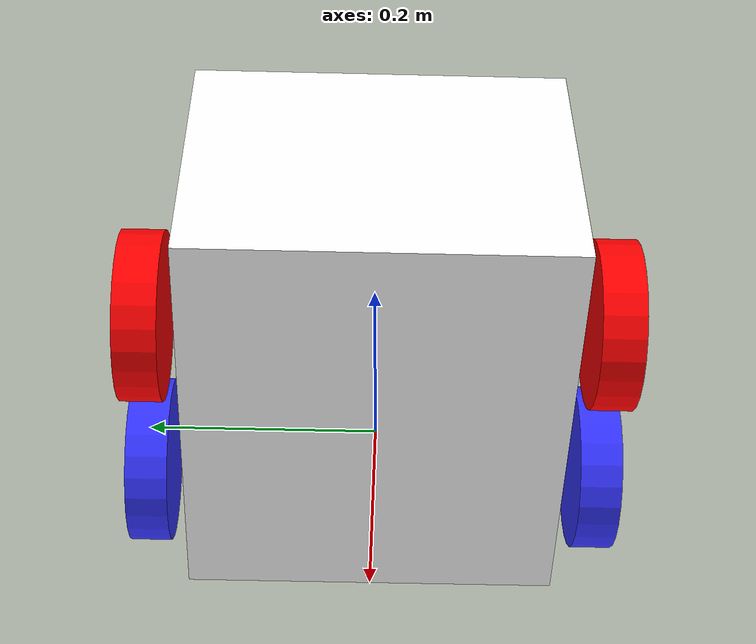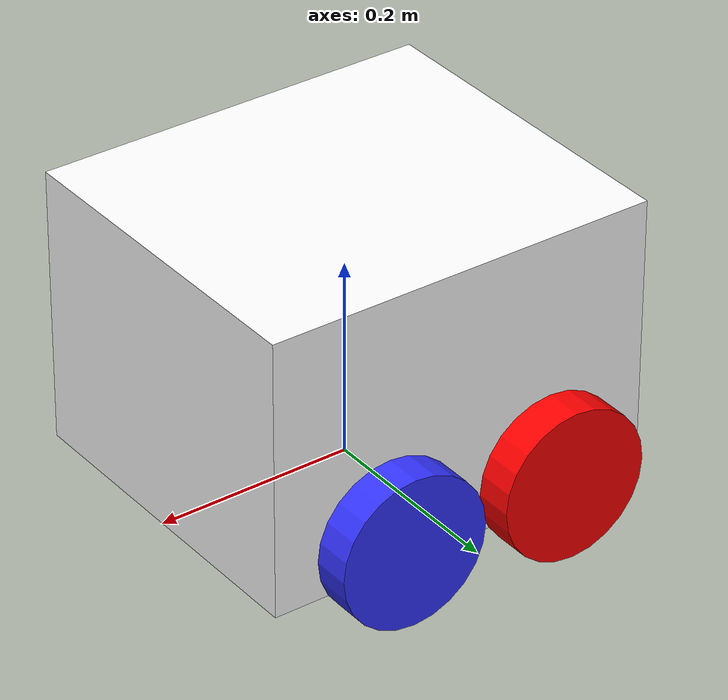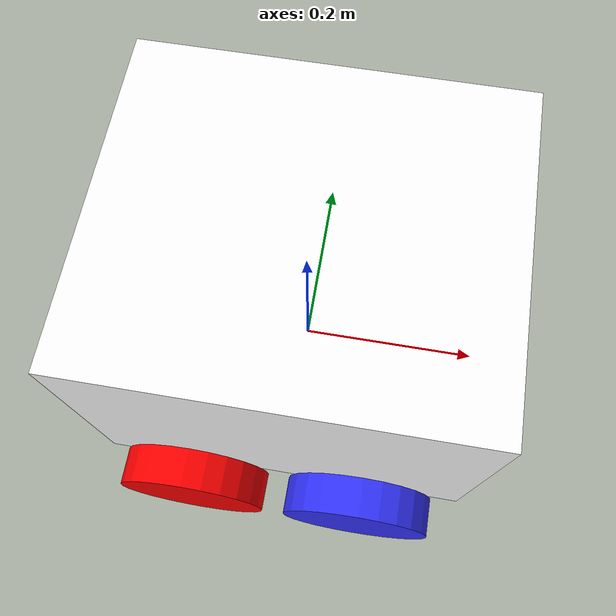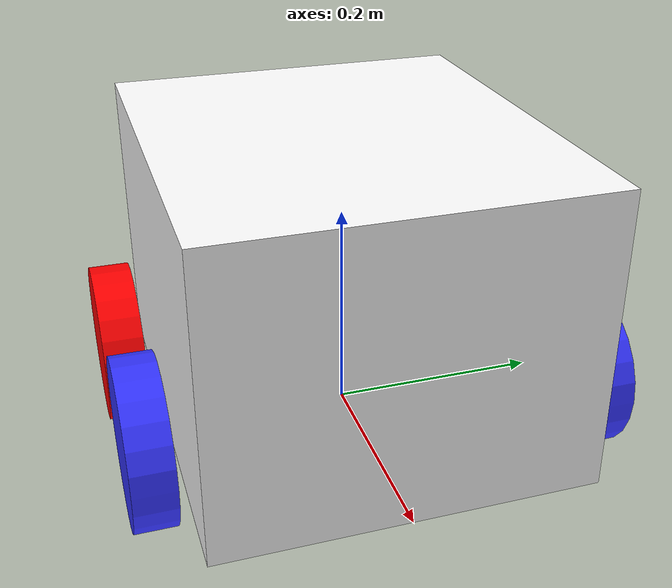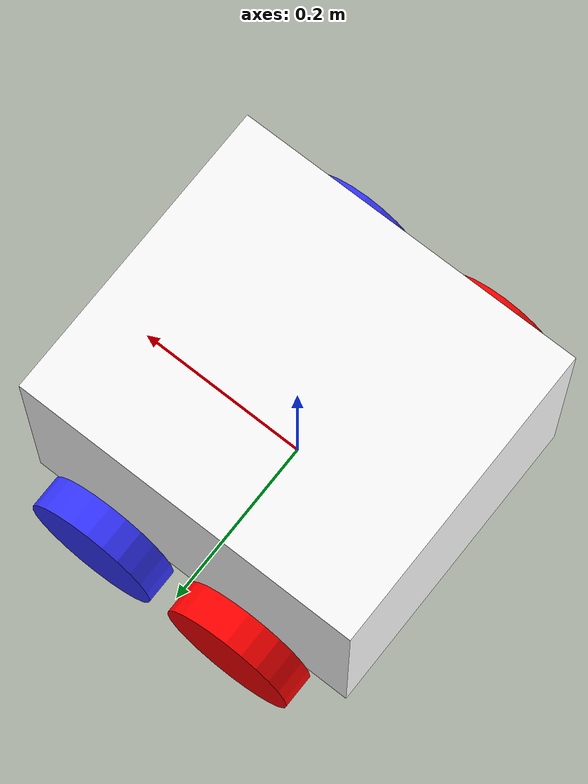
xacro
<?xml version="1.0"?>
<robot xmlns:xacro="http://www.ros.org/wiki/xacro">

    <xacro:include filename="inertial_macros.xacro"/>

    <!-- These are in meters and kilograms -->
    <xacro:property name="chassis_length" value="0.4"/>
    <xacro:property name="chassis_width" value="0.35"/>
    <xacro:property name="chassis_height" value="0.28"/>
    <xacro:property name="chassis_mass" value="30"/> <!-- TODO -->
    <xacro:property name="wheel_radius" value="0.0762"/>
    <xacro:property name="wheel_thickness" value="0.0381"/>
    <xacro:property name="wheel_mass" value="1.5"/> <!-- TODO -->
    <!-- From bottom center -->
    <xacro:property name="wheel_offset_x" value="0.0875"/>
    <xacro:property name="wheel_offset_y" value="${0.1877 + wheel_thickness/2}"/>
    <xacro:property name="wheel_offset_z" value="0.0508"/>

    <!-- Material setup for simulation -->
    <material name="white">
        <color rgba="1 1 1 1"/>
    </material>

    <material name="blue">
        <color rgba="0.2 0.2 1 1"/>
    </material>

    <material name="black">
        <color rgba="0 0 0 1"/>
    </material>

    <material name="red">
        <color rgba="1 0 0 1"/>
    </material>

    <!-- Base link -->
    <link name="base_link">

    </link>

    <!-- Base footprint link -->

    <joint name="base_footprint_joint" type="fixed">
        <parent link="base_link"/>
        <child link="base_footprint"/>
        <origin xyz="0 0 0"/>
    </joint>

    <link name="base_footprint">

    </link>

    <!-- Chassis -->
    <joint name="chassis_joint" type="fixed">
        <parent link="base_link"/>
        <child link="chassis"/>
        <origin xyz="-${chassis_length/2} 0 0"/>
    </joint>

    <link name="chassis">
        <visual>
            <origin xyz="${chassis_length/2} 0 ${chassis_height/2}"/> <!-- move forward and up half of dimensions, placing origin at rear bottom -->
            <geometry>
                <box size="${chassis_length} ${chassis_width} ${chassis_height}"/>
            </geometry>
            <material name="white"/>
        </visual>

        <collision>
            <origin xyz="${chassis_length/2} 0 ${chassis_height/2}"/>
            <geometry>
                <box size="${chassis_length} ${chassis_width} ${chassis_height}"/>
            </geometry>
        </collision>

        <xacro:inertial_box mass="${chassis_mass}" x="${chassis_length}" y="${chassis_width}" z="${chassis_height}">
            <origin xyz="${chassis_length/2} 0 ${chassis_height/2}"/>
        </xacro:inertial_box>
    </link>

    <gazebo reference="chassis">
        <material>Gazebo/White</material>
    </gazebo>

    <!-- Rear left wheel -->
    <joint name="rear_left_wheel_joint" type="continuous">
        <parent link="base_link"/>
        <child link="rear_left_wheel"/>
        <origin xyz="${-wheel_offset_x} ${wheel_offset_y} ${wheel_offset_z}" rpy="-${pi/2} 0 0"/> <!-- Rotate to be upright -->
        <axis xyz="0 0 1"/> <!-- Direction of rotation -->
    </joint>

    <link name="rear_left_wheel">
        <visual>
            <geometry>
                <cylinder radius="${wheel_radius}" length="${wheel_thickness}"/>
            </geometry>
            <material name="red"/>
        </visual>

        <collision>
            <geometry>
                <cylinder radius="${wheel_radius}" length="${wheel_thickness}"/>
            </geometry>
        </collision>

        <xacro:inertial_cylinder mass="${wheel_mass}" radius="${wheel_radius}" length="${wheel_thickness}">
            <origin xyz="0 0 0"/> <!-- No origin given, so set to 0s -->
        </xacro:inertial_cylinder>
    </link>

    <gazebo reference="rear_left_wheel">
        <material>Gazebo/Red</material>
    </gazebo>

    <!-- Rear right wheel -->
    <joint name="rear_right_wheel_joint" type="continuous">
        <parent link="base_link"/>
        <child link="rear_right_wheel"/>
        <origin xyz="${-wheel_offset_x} ${-wheel_offset_y} ${wheel_offset_z}" rpy="${pi/2} 0 0"/>
        <axis xyz="0 0 -1"/>
    </joint>

    <link name="rear_right_wheel">
        <visual>
            <geometry>
                <cylinder radius="${wheel_radius}" length="${wheel_thickness}"/>
            </geometry>
            <material name="red"/>
        </visual>

        <collision>
            <geometry>
                <cylinder radius="${wheel_radius}" length="${wheel_thickness}"/>
            </geometry>
        </collision>

        <xacro:inertial_cylinder mass="${wheel_mass}" radius="${wheel_radius}" length="${wheel_thickness}">
            <origin xyz="0 0 0"/>
        </xacro:inertial_cylinder>
    </link>

    <gazebo reference="rear_right_wheel">
        <material>Gazebo/Red</material>
    </gazebo>

    <!-- Front left wheel -->
    <joint name="front_left_wheel_joint" type="continuous">
        <parent link="base_link"/>
        <child link="front_left_wheel"/>
        <origin xyz="${wheel_offset_x} ${wheel_offset_y} ${wheel_offset_z}" rpy="-${pi/2} 0 0"/>
        <axis xyz="0 0 1"/>
    </joint>

    <link name="front_left_wheel">
        <visual>
            <geometry>
                <cylinder radius="${wheel_radius}" length="${wheel_thickness}"/>
            </geometry>
            <material name="blue"/>
        </visual>

        <collision>
            <geometry>
                <cylinder radius="${wheel_radius}" length="${wheel_thickness}"/>
            </geometry>
        </collision>

        <xacro:inertial_cylinder mass="${wheel_mass}" radius="${wheel_radius}" length="${wheel_thickness}">
            <origin xyz="0 0 0"/>
        </xacro:inertial_cylinder>
    </link>

    <gazebo reference="front_left_wheel">
        <material>Gazebo/Blue</material>
    </gazebo>

    <!-- Front right wheel -->
    <joint name="front_right_wheel_joint" type="continuous">
        <parent link="base_link"/>
        <child link="front_right_wheel"/>
        <origin xyz="${wheel_offset_x} ${-wheel_offset_y} ${wheel_offset_z}" rpy="${pi/2} 0 0"/>
        <axis xyz="0 0 -1"/>
    </joint>

    <link name="front_right_wheel">
        <visual>
            <geometry>
                <cylinder radius="${wheel_radius}" length="${wheel_thickness}"/>
            </geometry>
            <material name="blue"/>
        </visual>

        <collision>
            <geometry>
                <cylinder radius="${wheel_radius}" length="${wheel_thickness}"/>
            </geometry>
        </collision>

        <xacro:inertial_cylinder mass="${wheel_mass}" radius="${wheel_radius}" length="${wheel_thickness}">
            <origin xyz="0 0 0"/>
        </xacro:inertial_cylinder>
    </link>

    <gazebo reference="front_right_wheel">
        <material>Gazebo/Blue</material>
    </gazebo>

</robot>

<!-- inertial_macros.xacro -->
<!-- From https://github.com/joshnewans/articubot_one, modified -->

<robot xmlns:xacro="http://www.ros.org/wiki/xacro" >

    <!-- Specify some standard inertial calculations https://en.wikipedia.org/wiki/List_of_moments_of_inertia -->
    <!-- These make use of xacro's mathematical functionality -->

    <xacro:macro name="inertial_box" params="mass x y z *origin">
        <inertial>
            <xacro:insert_block name="origin"/>
            <mass value="${mass}" />
            <inertia ixx="${(1/12) * mass * (y*y+z*z)}" ixy="0.0" ixz="0.0"
                    iyy="${(1/12) * mass * (x*x+z*z)}" iyz="0.0"
                    izz="${(1/12) * mass * (x*x+y*y)}" />
        </inertial>
    </xacro:macro>

    <xacro:macro name="inertial_cylinder" params="mass length radius *origin">
        <inertial>
            <xacro:insert_block name="origin"/>
            <mass value="${mass}" />
            <inertia ixx="${(1/12) * mass * (3*radius*radius + length*length)}" ixy="0.0" ixz="0.0"
                    iyy="${(1/12) * mass * (3*radius*radius + length*length)}" iyz="0.0"
                    izz="${(1/2) * mass * (radius*radius)}" />
        </inertial>
    </xacro:macro>

</robot>
